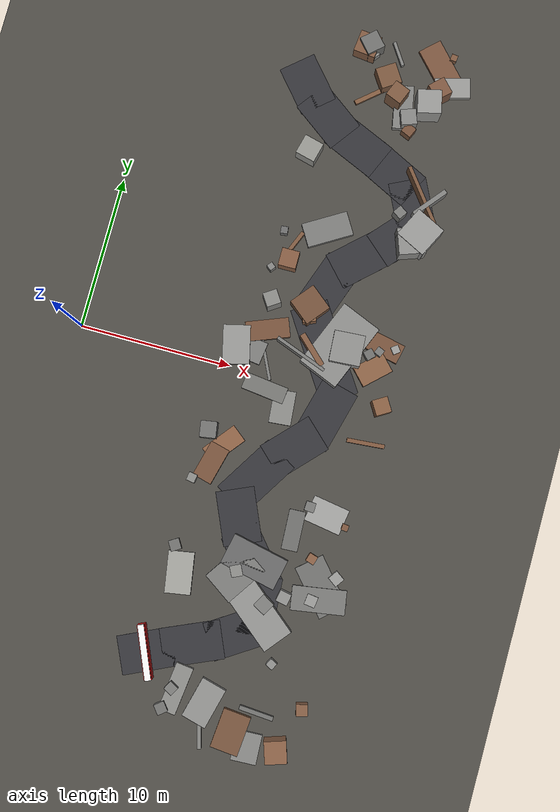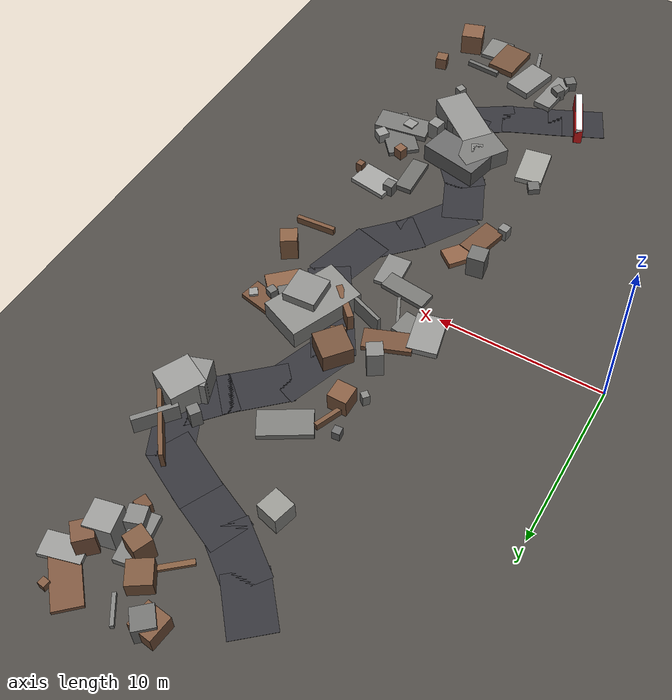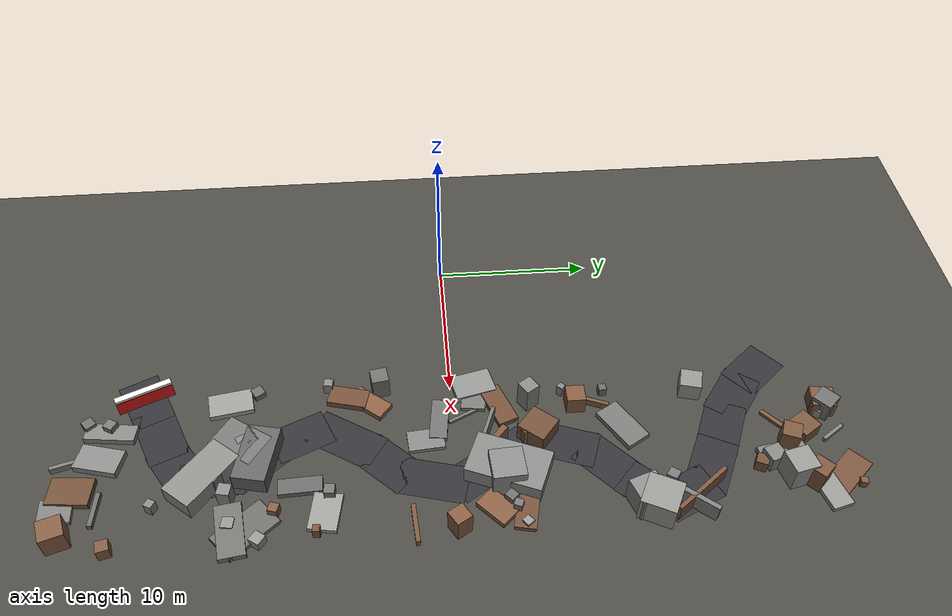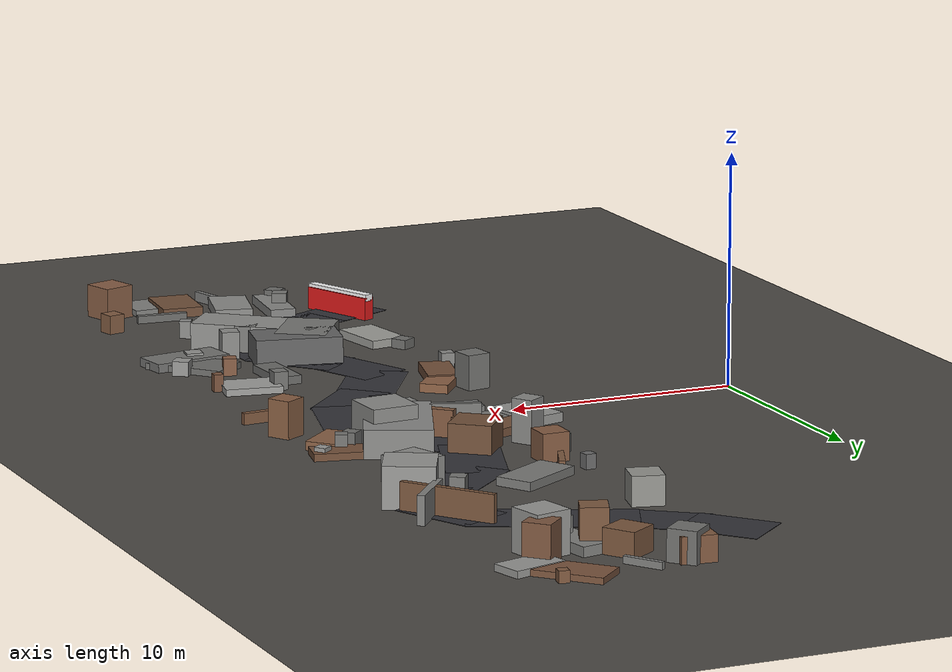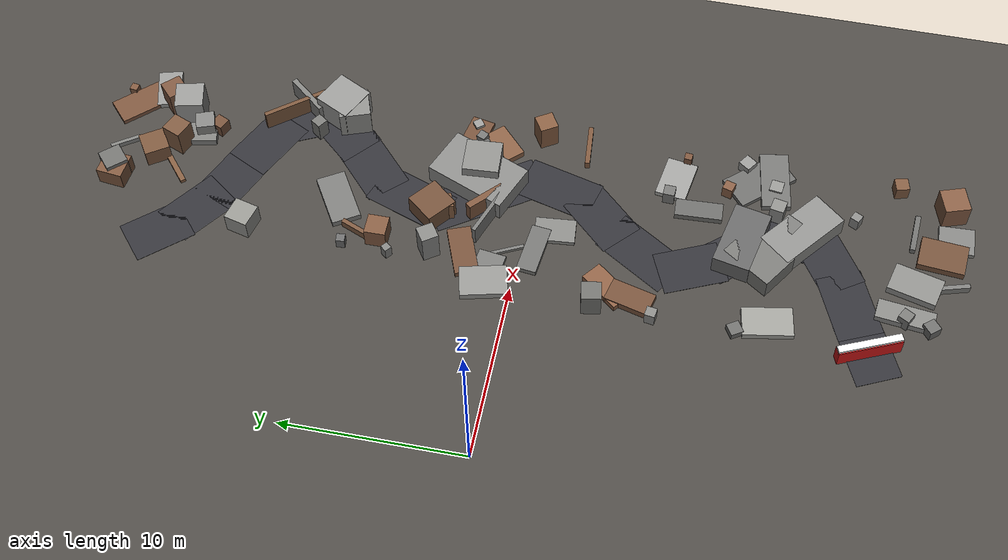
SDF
<sdf version="1.6">
 <world name="navitas_arena">
  <model name="ground_plane">
   <static>true</static>
   <link name="link">
    <collision name="collision">
     <geometry><plane><normal>0 0 1</normal><size>400 400</size></plane></geometry>
     <surface><friction><ode><mu>0.800</mu><mu2>0.800</mu2></ode></friction></surface>
    </collision>
    <visual name="visual">
     <cast_shadows>false</cast_shadows>
     <geometry><plane><normal>0 0 1</normal><size>400 400</size></plane></geometry>
     <material><ambient>0.300 0.290 0.270 1</ambient><diffuse>0.300 0.290 0.270 1</diffuse></material>
    </visual>
   </link>
  </model>
  <model name="road_orta_3_2">
   <static>true</static>
   <pose>9.803 -18.930 0.040 0 0 0.435</pose>
   <link name="link">
    <collision name="col"><geometry><box><size>3.607 2.500 0.020</size></box></geometry></collision>
    <visual name="vis">
     <geometry><box><size>3.607 2.500 0.020</size></box></geometry>
     <material><ambient>0.20 0.20 0.22 1</ambient><diffuse>0.20 0.20 0.22 1</diffuse></material>
    </visual>
   </link>
  </model>
  <model name="road_orta_3_3">
   <static>true</static>
   <pose>12.409 -17.758 0.040 0 0 0.412</pose>
   <link name="link">
    <collision name="col"><geometry><box><size>3.908 2.500 0.020</size></box></geometry></collision>
    <visual name="vis">
     <geometry><box><size>3.908 2.500 0.020</size></box></geometry>
     <material><ambient>0.20 0.20 0.22 1</ambient><diffuse>0.20 0.20 0.22 1</diffuse></material>
    </visual>
   </link>
  </model>
  <model name="road_orta_3_4">
   <static>true</static>
   <pose>14.846 -16.469 0.040 0 0 0.575</pose>
   <link name="link">
    <collision name="col"><geometry><box><size>3.424 2.500 0.020</size></box></geometry></collision>
    <visual name="vis">
     <geometry><box><size>3.424 2.500 0.020</size></box></geometry>
     <material><ambient>0.20 0.20 0.22 1</ambient><diffuse>0.20 0.20 0.22 1</diffuse></material>
    </visual>
   </link>
  </model>
  <model name="road_orta_3_5">
   <static>true</static>
   <pose>15.804 -14.317 0.040 0 0 1.639</pose>
   <link name="link">
    <collision name="col"><geometry><box><size>3.838 2.500 0.020</size></box></geometry></collision>
    <visual name="vis">
     <geometry><box><size>3.838 2.500 0.020</size></box></geometry>
     <material><ambient>0.20 0.20 0.22 1</ambient><diffuse>0.20 0.20 0.22 1</diffuse></material>
    </visual>
   </link>
  </model>
  <model name="road_orta_3_6">
   <static>true</static>
   <pose>14.692 -11.639 0.040 0 0 2.266</pose>
   <link name="link">
    <collision name="col"><geometry><box><size>4.059 2.500 0.020</size></box></geometry></collision>
    <visual name="vis">
     <geometry><box><size>4.059 2.500 0.020</size></box></geometry>
     <material><ambient>0.20 0.20 0.22 1</ambient><diffuse>0.20 0.20 0.22 1</diffuse></material>
    </visual>
   </link>
  </model>
  <model name="road_orta_3_7">
   <static>true</static>
   <pose>13.147 -9.213 0.040 0 0 1.985</pose>
   <link name="link">
    <collision name="col"><geometry><box><size>3.550 2.500 0.020</size></box></geometry></collision>
    <visual name="vis">
     <geometry><box><size>3.550 2.500 0.020</size></box></geometry>
     <material><ambient>0.20 0.20 0.22 1</ambient><diffuse>0.20 0.20 0.22 1</diffuse></material>
    </visual>
   </link>
  </model>
  <model name="road_orta_3_8">
   <static>true</static>
   <pose>13.553 -6.500 0.040 0 0 1.011</pose>
   <link name="link">
    <collision name="col"><geometry><box><size>4.440 2.500 0.020</size></box></geometry></collision>
    <visual name="vis">
     <geometry><box><size>4.440 2.500 0.020</size></box></geometry>
     <material><ambient>0.20 0.20 0.22 1</ambient><diffuse>0.20 0.20 0.22 1</diffuse></material>
    </visual>
   </link>
  </model>
  <model name="road_orta_3_9">
   <static>true</static>
   <pose>15.436 -4.000 0.040 0 0 0.815</pose>
   <link name="link">
    <collision name="col"><geometry><box><size>3.649 2.500 0.020</size></box></geometry></collision>
    <visual name="vis">
     <geometry><box><size>3.649 2.500 0.020</size></box></geometry>
     <material><ambient>0.20 0.20 0.22 1</ambient><diffuse>0.20 0.20 0.22 1</diffuse></material>
    </visual>
   </link>
  </model>
  <model name="road_orta_3_10">
   <static>true</static>
   <pose>16.792 -1.417 0.040 0 0 1.315</pose>
   <link name="link">
    <collision name="col"><geometry><box><size>4.173 2.500 0.020</size></box></geometry></collision>
    <visual name="vis">
     <geometry><box><size>4.173 2.500 0.020</size></box></geometry>
     <material><ambient>0.20 0.20 0.22 1</ambient><diffuse>0.20 0.20 0.22 1</diffuse></material>
    </visual>
   </link>
  </model>
  <model name="road_orta_3_11">
   <static>true</static>
   <pose>16.433 1.333 0.040 0 0 2.156</pose>
   <link name="link">
    <collision name="col"><geometry><box><size>3.699 2.500 0.020</size></box></geometry></collision>
    <visual name="vis">
     <geometry><box><size>3.699 2.500 0.020</size></box></geometry>
     <material><ambient>0.20 0.20 0.22 1</ambient><diffuse>0.20 0.20 0.22 1</diffuse></material>
    </visual>
   </link>
  </model>
  <model name="road_orta_3_12">
   <static>true</static>
   <pose>14.907 3.667 0.040 0 0 2.144</pose>
   <link name="link">
    <collision name="col"><geometry><box><size>3.677 2.500 0.020</size></box></geometry></collision>
    <visual name="vis">
     <geometry><box><size>3.677 2.500 0.020</size></box></geometry>
     <material><ambient>0.20 0.20 0.22 1</ambient><diffuse>0.20 0.20 0.22 1</diffuse></material>
    </visual>
   </link>
  </model>
  <model name="road_orta_3_13">
   <static>true</static>
   <pose>14.732 6.453 0.040 0 0 1.228</pose>
   <link name="link">
    <collision name="col"><geometry><box><size>4.340 2.500 0.020</size></box></geometry></collision>
    <visual name="vis">
     <geometry><box><size>4.340 2.500 0.020</size></box></geometry>
     <material><ambient>0.20 0.20 0.22 1</ambient><diffuse>0.20 0.20 0.22 1</diffuse></material>
    </visual>
   </link>
  </model>
  <model name="road_orta_3_14">
   <static>true</static>
   <pose>16.453 9.124 0.040 0 0 0.744</pose>
   <link name="link">
    <collision name="col"><geometry><box><size>4.004 2.500 0.020</size></box></geometry></collision>
    <visual name="vis">
     <geometry><box><size>4.004 2.500 0.020</size></box></geometry>
     <material><ambient>0.20 0.20 0.22 1</ambient><diffuse>0.20 0.20 0.22 1</diffuse></material>
    </visual>
   </link>
  </model>
  <model name="road_orta_3_15">
   <static>true</static>
   <pose>18.461 11.153 0.040 0 0 0.846</pose>
   <link name="link">
    <collision name="col"><geometry><box><size>3.513 2.500 0.020</size></box></geometry></collision>
    <visual name="vis">
     <geometry><box><size>3.513 2.500 0.020</size></box></geometry>
     <material><ambient>0.20 0.20 0.22 1</ambient><diffuse>0.20 0.20 0.22 1</diffuse></material>
    </visual>
   </link>
  </model>
  <model name="road_orta_3_16">
   <static>true</static>
   <pose>18.755 13.314 0.040 0 0 2.021</pose>
   <link name="link">
    <collision name="col"><geometry><box><size>3.528 2.500 0.020</size></box></geometry></collision>
    <visual name="vis">
     <geometry><box><size>3.528 2.500 0.020</size></box></geometry>
     <material><ambient>0.20 0.20 0.22 1</ambient><diffuse>0.20 0.20 0.22 1</diffuse></material>
    </visual>
   </link>
  </model>
  <model name="road_orta_3_17">
   <static>true</static>
   <pose>16.889 15.135 0.040 0 0 2.684</pose>
   <link name="link">
    <collision name="col"><geometry><box><size>3.785 2.500 0.020</size></box></geometry></collision>
    <visual name="vis">
     <geometry><box><size>3.785 2.500 0.020</size></box></geometry>
     <material><ambient>0.20 0.20 0.22 1</ambient><diffuse>0.20 0.20 0.22 1</diffuse></material>
    </visual>
   </link>
  </model>
  <model name="road_orta_3_18">
   <static>true</static>
   <pose>14.273 16.352 0.040 0 0 2.729</pose>
   <link name="link">
    <collision name="col"><geometry><box><size>3.787 2.500 0.020</size></box></geometry></collision>
    <visual name="vis">
     <geometry><box><size>3.787 2.500 0.020</size></box></geometry>
     <material><ambient>0.20 0.20 0.22 1</ambient><diffuse>0.20 0.20 0.22 1</diffuse></material>
    </visual>
   </link>
  </model>
  <model name="road_orta_3_19">
   <static>true</static>
   <pose>11.869 17.729 0.040 0 0 2.506</pose>
   <link name="link">
    <collision name="col"><geometry><box><size>3.588 2.500 0.020</size></box></geometry></collision>
    <visual name="vis">
     <geometry><box><size>3.588 2.500 0.020</size></box></geometry>
     <material><ambient>0.20 0.20 0.22 1</ambient><diffuse>0.20 0.20 0.22 1</diffuse></material>
    </visual>
   </link>
  </model>
  <model name="road_orta_3_20">
   <static>true</static>
   <pose>9.989 19.461 0.040 0 0 2.279</pose>
   <link name="link">
    <collision name="col"><geometry><box><size>3.358 2.500 0.020</size></box></geometry></collision>
    <visual name="vis">
     <geometry><box><size>3.358 2.500 0.020</size></box></geometry>
     <material><ambient>0.20 0.20 0.22 1</ambient><diffuse>0.20 0.20 0.22 1</diffuse></material>
    </visual>
   </link>
  </model>
  <model name="bar_orta_3">
   <static>true</static>
   <pose>9.706 -18.931 0.500 0 0 1.978</pose>
   <link name="link">
    <collision name="col"><geometry><box><size>3.500 0.500 1.000</size></box></geometry></collision>
    <visual name="vis">
     <geometry><box><size>3.500 0.500 1.000</size></box></geometry>
     <material><ambient>0.85 0.10 0.10 1</ambient><diffuse>0.85 0.10 0.10 1</diffuse></material>
    </visual>
   </link>
  </model>
  <model name="bar_orta_3b">
   <static>true</static>
   <pose>9.706 -18.931 1.000 0 0 1.978</pose>
   <link name="link">
    <collision name="col"><geometry><box><size>3.500 0.400 0.300</size></box></geometry></collision>
    <visual name="vis">
     <geometry><box><size>3.500 0.400 0.300</size></box></geometry>
     <material><ambient>0.95 0.95 0.95 1</ambient><diffuse>0.95 0.95 0.95 1</diffuse></material>
    </visual>
   </link>
  </model>
  <model name="blk_orta_3_0_0">
   <static>true</static>
   <pose>13.924 -12.666 0.600 0 0 0.975</pose>
   <link name="link">
    <collision name="col"><geometry><box><size>3.023 2.226 1.200</size></box></geometry></collision>
    <visual name="vis">
     <geometry><box><size>3.023 2.226 1.200</size></box></geometry>
     <material><ambient>0.47 0.47 0.46 1</ambient><diffuse>0.47 0.47 0.46 1</diffuse></material>
    </visual>
   </link>
  </model>
  <model name="blk_orta_3_0_1">
   <static>true</static>
   <pose>13.928 -12.503 0.600 0 0 2.025</pose>
   <link name="link">
    <collision name="col"><geometry><box><size>0.737 0.737 1.200</size></box></geometry></collision>
    <visual name="vis">
     <geometry><box><size>0.737 0.737 1.200</size></box></geometry>
     <material><ambient>0.53 0.53 0.52 1</ambient><diffuse>0.53 0.53 0.52 1</diffuse></material>
    </visual>
   </link>
  </model>
  <model name="blk_orta_3_0_2">
   <static>true</static>
   <pose>17.259 -13.343 0.600 0 0 1.375</pose>
   <link name="link">
    <collision name="col"><geometry><box><size>0.762 0.762 1.200</size></box></geometry></collision>
    <visual name="vis">
     <geometry><box><size>0.762 0.762 1.200</size></box></geometry>
     <material><ambient>0.55 0.55 0.54 1</ambient><diffuse>0.55 0.55 0.54 1</diffuse></material>
    </visual>
   </link>
  </model>
  <model name="blk_orta_3_0_3">
   <static>true</static>
   <pose>15.993 -14.754 0.600 0 0 2.454</pose>
   <link name="link">
    <collision name="col"><geometry><box><size>4.218 2.079 1.200</size></box></geometry></collision>
    <visual name="vis">
     <geometry><box><size>4.218 2.079 1.200</size></box></geometry>
     <material><ambient>0.56 0.56 0.55 1</ambient><diffuse>0.56 0.56 0.55 1</diffuse></material>
    </visual>
   </link>
  </model>
  <model name="blk_orta_3_0_4">
   <static>true</static>
   <pose>14.865 -11.664 0.600 0 0 2.930</pose>
   <link name="link">
    <collision name="col"><geometry><box><size>3.759 2.035 1.200</size></box></geometry></collision>
    <visual name="vis">
     <geometry><box><size>3.759 2.035 1.200</size></box></geometry>
     <material><ambient>0.40 0.40 0.40 1</ambient><diffuse>0.40 0.40 0.40 1</diffuse></material>
    </visual>
   </link>
  </model>
  <model name="blk_orta_3_0_5">
   <static>true</static>
   <pose>16.156 -14.090 0.600 0 0 2.600</pose>
   <link name="link">
    <collision name="col"><geometry><box><size>0.925 0.925 1.200</size></box></geometry></collision>
    <visual name="vis">
     <geometry><box><size>0.925 0.925 1.200</size></box></geometry>
     <material><ambient>0.48 0.48 0.47 1</ambient><diffuse>0.48 0.48 0.47 1</diffuse></material>
    </visual>
   </link>
  </model>
  <model name="blk_orta_3_1_0">
   <static>true</static>
   <pose>14.891 2.293 0.600 0 0 2.379</pose>
   <link name="link">
    <collision name="col"><geometry><box><size>2.362 0.380 1.200</size></box></geometry></collision>
    <visual name="vis">
     <geometry><box><size>2.362 0.380 1.200</size></box></geometry>
     <material><ambient>0.50 0.35 0.25 1</ambient><diffuse>0.50 0.35 0.25 1</diffuse></material>
    </visual>
   </link>
  </model>
  <model name="blk_orta_3_1_1">
   <static>true</static>
   <pose>14.268 1.861 0.600 0 0 2.786</pose>
   <link name="link">
    <collision name="col"><geometry><box><size>3.629 0.219 1.200</size></box></geometry></collision>
    <visual name="vis">
     <geometry><box><size>3.629 0.219 1.200</size></box></geometry>
     <material><ambient>0.48 0.48 0.47 1</ambient><diffuse>0.48 0.48 0.47 1</diffuse></material>
    </visual>
   </link>
  </model>
  <model name="blk_orta_3_1_2">
   <static>true</static>
   <pose>14.006 5.078 0.626 0 0 2.456</pose>
   <link name="link">
    <collision name="col"><geometry><box><size>1.814 1.814 1.253</size></box></geometry></collision>
    <visual name="vis">
     <geometry><box><size>1.814 1.814 1.253</size></box></geometry>
     <material><ambient>0.45 0.32 0.23 1</ambient><diffuse>0.45 0.32 0.23 1</diffuse></material>
    </visual>
   </link>
  </model>
  <model name="blk_orta_3_1_3">
   <static>true</static>
   <pose>14.107 4.412 0.600 0 0 0.382</pose>
   <link name="link">
    <collision name="col"><geometry><box><size>0.876 0.876 1.200</size></box></geometry></collision>
    <visual name="vis">
     <geometry><box><size>0.876 0.876 1.200</size></box></geometry>
     <material><ambient>0.51 0.36 0.25 1</ambient><diffuse>0.51 0.36 0.25 1</diffuse></material>
    </visual>
   </link>
  </model>
  <model name="blk_orta_3_1_4">
   <static>true</static>
   <pose>16.523 3.053 0.600 0 0 1.179</pose>
   <link name="link">
    <collision name="col"><geometry><box><size>4.667 2.814 1.200</size></box></geometry></collision>
    <visual name="vis">
     <geometry><box><size>4.667 2.814 1.200</size></box></geometry>
     <material><ambient>0.54 0.54 0.53 1</ambient><diffuse>0.54 0.54 0.53 1</diffuse></material>
    </visual>
   </link>
  </model>
  <model name="blk_orta_3_1_5">
   <static>true</static>
   <pose>17.021 2.909 0.894 0 0 1.633</pose>
   <link name="link">
    <collision name="col"><geometry><box><size>1.996 1.996 1.789</size></box></geometry></collision>
    <visual name="vis">
     <geometry><box><size>1.996 1.996 1.789</size></box></geometry>
     <material><ambient>0.55 0.55 0.54 1</ambient><diffuse>0.55 0.55 0.54 1</diffuse></material>
    </visual>
   </link>
  </model>
  <model name="blk_orta_3_2_0">
   <static>true</static>
   <pose>19.217 10.724 0.856 0 0 0.338</pose>
   <link name="link">
    <collision name="col"><geometry><box><size>1.741 1.741 1.713</size></box></geometry></collision>
    <visual name="vis">
     <geometry><box><size>1.741 1.741 1.713</size></box></geometry>
     <material><ambient>0.55 0.55 0.54 1</ambient><diffuse>0.55 0.55 0.54 1</diffuse></material>
    </visual>
   </link>
  </model>
  <model name="blk_orta_3_2_1">
   <static>true</static>
   <pose>19.632 11.402 0.869 0 0 1.107</pose>
   <link name="link">
    <collision name="col"><geometry><box><size>2.116 2.116 1.739</size></box></geometry></collision>
    <visual name="vis">
     <geometry><box><size>2.116 2.116 1.739</size></box></geometry>
     <material><ambient>0.59 0.59 0.58 1</ambient><diffuse>0.59 0.59 0.58 1</diffuse></material>
    </visual>
   </link>
  </model>
  <model name="blk_orta_3_2_2">
   <static>true</static>
   <pose>19.747 13.560 0.600 0 0 0.881</pose>
   <link name="link">
    <collision name="col"><geometry><box><size>2.581 0.306 1.200</size></box></geometry></collision>
    <visual name="vis">
     <geometry><box><size>2.581 0.306 1.200</size></box></geometry>
     <material><ambient>0.50 0.50 0.49 1</ambient><diffuse>0.50 0.50 0.49 1</diffuse></material>
    </visual>
   </link>
  </model>
  <model name="blk_orta_3_2_3">
   <static>true</static>
   <pose>18.056 12.438 0.600 0 0 2.540</pose>
   <link name="link">
    <collision name="col"><geometry><box><size>0.638 0.638 1.200</size></box></geometry></collision>
    <visual name="vis">
     <geometry><box><size>0.638 0.638 1.200</size></box></geometry>
     <material><ambient>0.47 0.47 0.46 1</ambient><diffuse>0.47 0.47 0.46 1</diffuse></material>
    </visual>
   </link>
  </model>
  <model name="blk_orta_3_2_5">
   <static>true</static>
   <pose>19.142 13.897 0.600 0 0 2.226</pose>
   <link name="link">
    <collision name="col"><geometry><box><size>4.090 0.243 1.200</size></box></geometry></collision>
    <visual name="vis">
     <geometry><box><size>4.090 0.243 1.200</size></box></geometry>
     <material><ambient>0.48 0.34 0.24 1</ambient><diffuse>0.48 0.34 0.24 1</diffuse></material>
    </visual>
   </link>
  </model>
  <model name="deb_orta_0">
   <static>true</static>
   <pose>15.893 19.936 0.848 0 0 2.752</pose>
   <link name="link">
    <collision name="col"><geometry><box><size>1.105 1.105 1.696</size></box></geometry></collision>
    <visual name="vis">
     <geometry><box><size>1.105 1.105 1.696</size></box></geometry>
     <material><ambient>0.49 0.35 0.25 1</ambient><diffuse>0.49 0.35 0.25 1</diffuse></material>
    </visual>
   </link>
  </model>
  <model name="deb_orta_8">
   <static>true</static>
   <pose>11.550 4.754 0.925 0 0 0.583</pose>
   <link name="link">
    <collision name="col"><geometry><box><size>0.940 0.940 1.849</size></box></geometry></collision>
    <visual name="vis">
     <geometry><box><size>0.940 0.940 1.849</size></box></geometry>
     <material><ambient>0.53 0.53 0.52 1</ambient><diffuse>0.53 0.53 0.52 1</diffuse></material>
    </visual>
   </link>
  </model>
  <model name="deb_orta_10">
   <static>true</static>
   <pose>17.396 -7.403 0.399 0 0 1.528</pose>
   <link name="link">
    <collision name="col"><geometry><box><size>0.627 0.627 0.798</size></box></geometry></collision>
    <visual name="vis">
     <geometry><box><size>0.627 0.627 0.798</size></box></geometry>
     <material><ambient>0.46 0.46 0.45 1</ambient><diffuse>0.46 0.46 0.45 1</diffuse></material>
    </visual>
   </link>
  </model>
  <model name="deb_orta_14">
   <static>true</static>
   <pose>10.909 6.915 0.374 0 0 0.875</pose>
   <link name="link">
    <collision name="col"><geometry><box><size>0.414 0.414 0.748</size></box></geometry></collision>
    <visual name="vis">
     <geometry><box><size>0.414 0.414 0.748</size></box></geometry>
     <material><ambient>0.51 0.51 0.50 1</ambient><diffuse>0.51 0.51 0.50 1</diffuse></material>
    </visual>
   </link>
  </model>
  <model name="deb_orta_15">
   <static>true</static>
   <pose>17.616 -17.583 0.379 0 0 1.093</pose>
   <link name="link">
    <collision name="col"><geometry><box><size>0.508 0.508 0.758</size></box></geometry></collision>
    <visual name="vis">
     <geometry><box><size>0.508 0.508 0.758</size></box></geometry>
     <material><ambient>0.54 0.54 0.53 1</ambient><diffuse>0.54 0.54 0.53 1</diffuse></material>
    </visual>
   </link>
  </model>
  <model name="deb_orta_19">
   <static>true</static>
   <pose>16.490 19.500 0.209 0 0 1.753</pose>
   <link name="link">
    <collision name="col"><geometry><box><size>2.902 1.244 0.418</size></box></geometry></collision>
    <visual name="vis">
     <geometry><box><size>2.902 1.244 0.418</size></box></geometry>
     <material><ambient>0.50 0.50 0.49 1</ambient><diffuse>0.50 0.50 0.49 1</diffuse></material>
    </visual>
   </link>
  </model>
  <model name="deb_orta_21">
   <static>true</static>
   <pose>20.104 3.801 0.238 0 0 0.640</pose>
   <link name="link">
    <collision name="col"><geometry><box><size>0.507 0.507 0.477</size></box></geometry></collision>
    <visual name="vis">
     <geometry><box><size>0.507 0.507 0.477</size></box></geometry>
     <material><ambient>0.60 0.60 0.59 1</ambient><diffuse>0.60 0.60 0.59 1</diffuse></material>
    </visual>
   </link>
  </model>
  <model name="deb_orta_27">
   <static>true</static>
   <pose>12.580 -0.804 0.158 0 0 3.024</pose>
   <link name="link">
    <collision name="col"><geometry><box><size>2.854 1.082 0.316</size></box></geometry></collision>
    <visual name="vis">
     <geometry><box><size>2.854 1.082 0.316</size></box></geometry>
     <material><ambient>0.45 0.45 0.44 1</ambient><diffuse>0.45 0.45 0.44 1</diffuse></material>
    </visual>
   </link>
  </model>
  <model name="deb_orta_29">
   <static>true</static>
   <pose>9.697 -12.002 0.205 0 0 0.554</pose>
   <link name="link">
    <collision name="col"><geometry><box><size>0.704 0.704 0.410</size></box></geometry></collision>
    <visual name="vis">
     <geometry><box><size>0.704 0.704 0.410</size></box></geometry>
     <material><ambient>0.43 0.43 0.42 1</ambient><diffuse>0.43 0.43 0.42 1</diffuse></material>
    </visual>
   </link>
  </model>
  <model name="deb_orta_31">
   <static>true</static>
   <pose>13.165 22.786 0.536 0 0 3.026</pose>
   <link name="link">
    <collision name="col"><geometry><box><size>1.448 1.448 1.073</size></box></geometry></collision>
    <visual name="vis">
     <geometry><box><size>1.448 1.448 1.073</size></box></geometry>
     <material><ambient>0.50 0.35 0.25 1</ambient><diffuse>0.50 0.35 0.25 1</diffuse></material>
    </visual>
   </link>
  </model>
  <model name="deb_orta_38">
   <static>true</static>
   <pose>14.293 -22.793 0.223 0 0 1.850</pose>
   <link name="link">
    <collision name="col"><geometry><box><size>2.252 0.250 0.445</size></box></geometry></collision>
    <visual name="vis">
     <geometry><box><size>2.252 0.250 0.445</size></box></geometry>
     <material><ambient>0.49 0.49 0.48 1</ambient><diffuse>0.49 0.49 0.48 1</diffuse></material>
    </visual>
   </link>
  </model>
  <model name="deb_orta_47">
   <static>true</static>
   <pose>12.161 0.999 0.092 0 0 2.019</pose>
   <link name="link">
    <collision name="col"><geometry><box><size>2.692 0.190 0.184</size></box></geometry></collision>
    <visual name="vis">
     <geometry><box><size>2.692 0.190 0.184</size></box></geometry>
     <material><ambient>0.48 0.48 0.47 1</ambient><diffuse>0.48 0.48 0.47 1</diffuse></material>
    </visual>
   </link>
  </model>
  <model name="deb_orta_48">
   <static>true</static>
   <pose>13.793 10.312 0.184 0 0 0.543</pose>
   <link name="link">
    <collision name="col"><geometry><box><size>3.073 1.603 0.369</size></box></geometry></collision>
    <visual name="vis">
     <geometry><box><size>3.073 1.603 0.369</size></box></geometry>
     <material><ambient>0.48 0.48 0.47 1</ambient><diffuse>0.48 0.48 0.47 1</diffuse></material>
    </visual>
   </link>
  </model>
  <model name="deb_orta_49">
   <static>true</static>
   <pose>11.097 9.480 0.311 0 0 0.107</pose>
   <link name="link">
    <collision name="col"><geometry><box><size>0.472 0.472 0.622</size></box></geometry></collision>
    <visual name="vis">
     <geometry><box><size>0.472 0.472 0.622</size></box></geometry>
     <material><ambient>0.42 0.42 0.42 1</ambient><diffuse>0.42 0.42 0.42 1</diffuse></material>
    </visual>
   </link>
  </model>
  <model name="deb_orta_50">
   <static>true</static>
   <pose>10.700 1.467 0.140 0 0 3.006</pose>
   <link name="link">
    <collision name="col"><geometry><box><size>2.472 1.501 0.279</size></box></geometry></collision>
    <visual name="vis">
     <geometry><box><size>2.472 1.501 0.279</size></box></geometry>
     <material><ambient>0.48 0.48 0.47 1</ambient><diffuse>0.48 0.48 0.47 1</diffuse></material>
    </visual>
   </link>
  </model>
  <model name="deb_orta_54">
   <static>true</static>
   <pose>18.356 -10.558 0.369 0 0 2.841</pose>
   <link name="link">
    <collision name="col"><geometry><box><size>0.574 0.574 0.738</size></box></geometry></collision>
    <visual name="vis">
     <geometry><box><size>0.574 0.574 0.738</size></box></geometry>
     <material><ambient>0.53 0.37 0.27 1</ambient><diffuse>0.53 0.37 0.27 1</diffuse></material>
    </visual>
   </link>
  </model>
  <model name="deb_orta_57">
   <static>true</static>
   <pose>19.317 21.643 0.148 0 0 0.266</pose>
   <link name="link">
    <collision name="col"><geometry><box><size>2.318 1.341 0.295</size></box></geometry></collision>
    <visual name="vis">
     <geometry><box><size>2.318 1.341 0.295</size></box></geometry>
     <material><ambient>0.59 0.59 0.58 1</ambient><diffuse>0.59 0.59 0.58 1</diffuse></material>
    </visual>
   </link>
  </model>
  <model name="deb_orta_58">
   <static>true</static>
   <pose>15.282 22.966 0.149 0 0 2.160</pose>
   <link name="link">
    <collision name="col"><geometry><box><size>1.678 0.210 0.298</size></box></geometry></collision>
    <visual name="vis">
     <geometry><box><size>1.678 0.210 0.298</size></box></geometry>
     <material><ambient>0.50 0.50 0.49 1</ambient><diffuse>0.50 0.50 0.49 1</diffuse></material>
    </visual>
   </link>
  </model>
  <model name="deb_orta_68">
   <static>true</static>
   <pose>18.022 19.855 0.886 0 0 1.797</pose>
   <link name="link">
    <collision name="col"><geometry><box><size>1.559 1.559 1.772</size></box></geometry></collision>
    <visual name="vis">
     <geometry><box><size>1.559 1.559 1.772</size></box></geometry>
     <material><ambient>0.59 0.59 0.58 1</ambient><diffuse>0.59 0.59 0.58 1</diffuse></material>
    </visual>
   </link>
  </model>
  <model name="deb_orta_69">
   <static>true</static>
   <pose>16.991 18.744 0.545 0 0 1.899</pose>
   <link name="link">
    <collision name="col"><geometry><box><size>1.028 1.028 1.091</size></box></geometry></collision>
    <visual name="vis">
     <geometry><box><size>1.028 1.028 1.091</size></box></geometry>
     <material><ambient>0.52 0.52 0.51 1</ambient><diffuse>0.52 0.52 0.51 1</diffuse></material>
    </visual>
   </link>
  </model>
  <model name="deb_orta_74">
   <static>true</static>
   <pose>11.605 -22.047 0.326 0 0 2.249</pose>
   <link name="link">
    <collision name="col"><geometry><box><size>0.692 0.692 0.651</size></box></geometry></collision>
    <visual name="vis">
     <geometry><box><size>0.692 0.692 0.651</size></box></geometry>
     <material><ambient>0.43 0.43 0.42 1</ambient><diffuse>0.43 0.43 0.42 1</diffuse></material>
    </visual>
   </link>
  </model>
  <model name="deb_orta_76">
   <static>true</static>
   <pose>11.762 2.925 0.176 0 0 0.367</pose>
   <link name="link">
    <collision name="col"><geometry><box><size>2.839 1.295 0.353</size></box></geometry></collision>
    <visual name="vis">
     <geometry><box><size>2.839 1.295 0.353</size></box></geometry>
     <material><ambient>0.46 0.32 0.23 1</ambient><diffuse>0.46 0.32 0.23 1</diffuse></material>
    </visual>
   </link>
  </model>
  <model name="deb_orta_83">
   <static>true</static>
   <pose>12.188 -20.678 0.205 0 0 1.450</pose>
   <link name="link">
    <collision name="col"><geometry><box><size>3.098 1.149 0.410</size></box></geometry></collision>
    <visual name="vis">
     <geometry><box><size>3.098 1.149 0.410</size></box></geometry>
     <material><ambient>0.53 0.53 0.52 1</ambient><diffuse>0.53 0.53 0.52 1</diffuse></material>
    </visual>
   </link>
  </model>
  <model name="deb_orta_97">
   <static>true</static>
   <pose>11.900 7.638 0.609 0 0 1.575</pose>
   <link name="link">
    <collision name="col"><geometry><box><size>1.163 1.163 1.217</size></box></geometry></collision>
    <visual name="vis">
     <geometry><box><size>1.163 1.163 1.217</size></box></geometry>
     <material><ambient>0.52 0.36 0.26 1</ambient><diffuse>0.52 0.36 0.26 1</diffuse></material>
    </visual>
   </link>
  </model>
  <model name="deb_orta_98">
   <static>true</static>
   <pose>19.007 -13.125 0.241 0 0 1.440</pose>
   <link name="link">
    <collision name="col"><geometry><box><size>0.707 0.707 0.481</size></box></geometry></collision>
    <visual name="vis">
     <geometry><box><size>0.707 0.707 0.481</size></box></geometry>
     <material><ambient>0.58 0.58 0.57 1</ambient><diffuse>0.58 0.58 0.57 1</diffuse></material>
    </visual>
   </link>
  </model>
  <model name="deb_orta_111">
   <static>true</static>
   <pose>19.456 -12.983 0.191 0 0 0.156</pose>
   <link name="link">
    <collision name="col"><geometry><box><size>3.491 1.580 0.383</size></box></geometry></collision>
    <visual name="vis">
     <geometry><box><size>3.491 1.580 0.383</size></box></geometry>
     <material><ambient>0.46 0.46 0.45 1</ambient><diffuse>0.46 0.46 0.45 1</diffuse></material>
    </visual>
   </link>
  </model>
  <model name="deb_orta_119">
   <static>true</static>
   <pose>20.101 -0.063 0.794 0 0 0.546</pose>
   <link name="link">
    <collision name="col"><geometry><box><size>1.022 1.022 1.589</size></box></geometry></collision>
    <visual name="vis">
     <geometry><box><size>1.022 1.022 1.589</size></box></geometry>
     <material><ambient>0.53 0.37 0.26 1</ambient><diffuse>0.53 0.37 0.26 1</diffuse></material>
    </visual>
   </link>
  </model>
  <model name="deb_orta_120">
   <static>true</static>
   <pose>18.482 20.896 0.813 0 0 0.760</pose>
   <link name="link">
    <collision name="col"><geometry><box><size>1.144 1.144 1.627</size></box></geometry></collision>
    <visual name="vis">
     <geometry><box><size>1.144 1.144 1.627</size></box></geometry>
     <material><ambient>0.49 0.34 0.25 1</ambient><diffuse>0.49 0.34 0.25 1</diffuse></material>
    </visual>
   </link>
  </model>
  <model name="deb_orta_132">
   <static>true</static>
   <pose>9.609 -7.582 0.390 0 0 1.418</pose>
   <link name="link">
    <collision name="col"><geometry><box><size>0.560 0.560 0.781</size></box></geometry></collision>
    <visual name="vis">
     <geometry><box><size>0.560 0.560 0.781</size></box></geometry>
     <material><ambient>0.53 0.53 0.52 1</ambient><diffuse>0.53 0.53 0.52 1</diffuse></material>
    </visual>
   </link>
  </model>
  <model name="deb_orta_134">
   <static>true</static>
   <pose>19.070 3.883 0.152 0 0 2.935</pose>
   <link name="link">
    <collision name="col"><geometry><box><size>2.946 1.286 0.304</size></box></geometry></collision>
    <visual name="vis">
     <geometry><box><size>2.946 1.286 0.304</size></box></geometry>
     <material><ambient>0.46 0.32 0.23 1</ambient><diffuse>0.46 0.32 0.23 1</diffuse></material>
    </visual>
   </link>
  </model>
  <model name="deb_orta_136">
   <static>true</static>
   <pose>16.762 -9.135 0.181 0 0 1.616</pose>
   <link name="link">
    <collision name="col"><geometry><box><size>2.595 1.057 0.361</size></box></geometry></collision>
    <visual name="vis">
     <geometry><box><size>2.595 1.057 0.361</size></box></geometry>
     <material><ambient>0.42 0.42 0.41 1</ambient><diffuse>0.42 0.42 0.41 1</diffuse></material>
    </visual>
   </link>
  </model>
  <model name="deb_orta_138">
   <static>true</static>
   <pose>9.858 -4.366 0.756 0 0 0.159</pose>
   <link name="link">
    <collision name="col"><geometry><box><size>1.061 1.061 1.512</size></box></geometry></collision>
    <visual name="vis">
     <geometry><box><size>1.061 1.061 1.512</size></box></geometry>
     <material><ambient>0.44 0.44 0.43 1</ambient><diffuse>0.44 0.44 0.43 1</diffuse></material>
    </visual>
   </link>
  </model>
  <model name="deb_orta_140">
   <static>true</static>
   <pose>19.008 2.184 0.189 0 0 0.753</pose>
   <link name="link">
    <collision name="col"><geometry><box><size>2.151 1.407 0.378</size></box></geometry></collision>
    <visual name="vis">
     <geometry><box><size>2.151 1.407 0.378</size></box></geometry>
     <material><ambient>0.54 0.38 0.27 1</ambient><diffuse>0.54 0.38 0.27 1</diffuse></material>
    </visual>
   </link>
  </model>
  <model name="deb_orta_143">
   <static>true</static>
   <pose>18.581 -7.650 0.146 0 0 2.981</pose>
   <link name="link">
    <collision name="col"><geometry><box><size>2.435 1.706 0.292</size></box></geometry></collision>
    <visual name="vis">
     <geometry><box><size>2.435 1.706 0.292</size></box></geometry>
     <material><ambient>0.62 0.62 0.61 1</ambient><diffuse>0.62 0.62 0.61 1</diffuse></material>
    </visual>
   </link>
  </model>
  <model name="deb_orta_144">
   <static>true</static>
   <pose>13.745 22.474 0.296 0 0 0.881</pose>
   <link name="link">
    <collision name="col"><geometry><box><size>0.508 0.508 0.592</size></box></geometry></collision>
    <visual name="vis">
     <geometry><box><size>0.508 0.508 0.592</size></box></geometry>
     <material><ambient>0.57 0.57 0.56 1</ambient><diffuse>0.57 0.57 0.56 1</diffuse></material>
    </visual>
   </link>
  </model>
  <model name="deb_orta_147">
   <static>true</static>
   <pose>13.430 22.881 0.657 0 0 2.293</pose>
   <link name="link">
    <collision name="col"><geometry><box><size>1.217 1.217 1.314</size></box></geometry></collision>
    <visual name="vis">
     <geometry><box><size>1.217 1.217 1.314</size></box></geometry>
     <material><ambient>0.44 0.44 0.43 1</ambient><diffuse>0.44 0.44 0.43 1</diffuse></material>
    </visual>
   </link>
  </model>
  <model name="deb_orta_149">
   <static>true</static>
   <pose>20.189 -11.376 0.314 0 0 0.949</pose>
   <link name="link">
    <collision name="col"><geometry><box><size>0.710 0.710 0.628</size></box></geometry></collision>
    <visual name="vis">
     <geometry><box><size>0.710 0.710 0.628</size></box></geometry>
     <material><ambient>0.59 0.59 0.58 1</ambient><diffuse>0.59 0.59 0.58 1</diffuse></material>
    </visual>
   </link>
  </model>
  <model name="deb_orta_150">
   <static>true</static>
   <pose>14.008 -1.698 0.133 0 0 1.658</pose>
   <link name="link">
    <collision name="col"><geometry><box><size>2.212 1.447 0.267</size></box></geometry></collision>
    <visual name="vis">
     <geometry><box><size>2.212 1.447 0.267</size></box></geometry>
     <material><ambient>0.53 0.53 0.52 1</ambient><diffuse>0.53 0.53 0.52 1</diffuse></material>
    </visual>
   </link>
  </model>
  <model name="deb_orta_151">
   <static>true</static>
   <pose>10.999 -5.022 0.188 0 0 0.897</pose>
   <link name="link">
    <collision name="col"><geometry><box><size>2.515 1.227 0.376</size></box></geometry></collision>
    <visual name="vis">
     <geometry><box><size>2.515 1.227 0.376</size></box></geometry>
     <material><ambient>0.55 0.38 0.27 1</ambient><diffuse>0.55 0.38 0.27 1</diffuse></material>
    </visual>
   </link>
  </model>
  <model name="deb_orta_156">
   <static>true</static>
   <pose>19.885 -8.101 0.372 0 0 1.475</pose>
   <link name="link">
    <collision name="col"><geometry><box><size>0.418 0.418 0.744</size></box></geometry></collision>
    <visual name="vis">
     <geometry><box><size>0.418 0.418 0.744</size></box></geometry>
     <material><ambient>0.48 0.33 0.24 1</ambient><diffuse>0.48 0.33 0.24 1</diffuse></material>
    </visual>
   </link>
  </model>
  <model name="deb_orta_163">
   <static>true</static>
   <pose>18.180 22.893 0.130 0 0 2.315</pose>
   <link name="link">
    <collision name="col"><geometry><box><size>3.089 1.592 0.259</size></box></geometry></collision>
    <visual name="vis">
     <geometry><box><size>3.089 1.592 0.259</size></box></geometry>
     <material><ambient>0.48 0.33 0.24 1</ambient><diffuse>0.48 0.33 0.24 1</diffuse></material>
    </visual>
   </link>
  </model>
  <model name="deb_orta_169">
   <static>true</static>
   <pose>10.059 1.447 0.204 0 0 1.804</pose>
   <link name="link">
    <collision name="col"><geometry><box><size>2.555 1.781 0.408</size></box></geometry></collision>
    <visual name="vis">
     <geometry><box><size>2.555 1.781 0.408</size></box></geometry>
     <material><ambient>0.58 0.58 0.57 1</ambient><diffuse>0.58 0.58 0.57 1</diffuse></material>
    </visual>
   </link>
  </model>
  <model name="deb_orta_181">
   <static>true</static>
   <pose>16.244 -22.366 0.213 0 0 1.479</pose>
   <link name="link">
    <collision name="col"><geometry><box><size>2.538 1.816 0.426</size></box></geometry></collision>
    <visual name="vis">
     <geometry><box><size>2.538 1.816 0.426</size></box></geometry>
     <material><ambient>0.45 0.32 0.23 1</ambient><diffuse>0.45 0.32 0.23 1</diffuse></material>
    </visual>
   </link>
  </model>
  <model name="deb_orta_187">
   <static>true</static>
   <pose>19.395 -12.138 0.139 0 0 2.281</pose>
   <link name="link">
    <collision name="col"><geometry><box><size>3.546 1.964 0.278</size></box></geometry></collision>
    <visual name="vis">
     <geometry><box><size>3.546 1.964 0.278</size></box></geometry>
     <material><ambient>0.43 0.43 0.42 1</ambient><diffuse>0.43 0.43 0.42 1</diffuse></material>
    </visual>
   </link>
  </model>
  <model name="deb_orta_190">
   <static>true</static>
   <pose>10.527 -6.349 0.216 0 0 1.320</pose>
   <link name="link">
    <collision name="col"><geometry><box><size>2.449 1.321 0.432</size></box></geometry></collision>
    <visual name="vis">
     <geometry><box><size>2.449 1.321 0.432</size></box></geometry>
     <material><ambient>0.46 0.32 0.23 1</ambient><diffuse>0.46 0.32 0.23 1</diffuse></material>
    </visual>
   </link>
  </model>
  <model name="deb_orta_201">
   <static>true</static>
   <pose>10.450 -13.625 0.181 0 0 1.737</pose>
   <link name="link">
    <collision name="col"><geometry><box><size>2.703 1.677 0.362</size></box></geometry></collision>
    <visual name="vis">
     <geometry><box><size>2.703 1.677 0.362</size></box></geometry>
     <material><ambient>0.62 0.62 0.60 1</ambient><diffuse>0.62 0.62 0.60 1</diffuse></material>
    </visual>
   </link>
  </model>
  <model name="deb_orta_204">
   <static>true</static>
   <pose>17.539 4.246 0.346 0 0 2.126</pose>
   <link name="link">
    <collision name="col"><geometry><box><size>0.719 0.719 0.691</size></box></geometry></collision>
    <visual name="vis">
     <geometry><box><size>0.719 0.719 0.691</size></box></geometry>
     <material><ambient>0.47 0.47 0.46 1</ambient><diffuse>0.47 0.47 0.46 1</diffuse></material>
    </visual>
   </link>
  </model>
  <model name="deb_orta_208">
   <static>true</static>
   <pose>11.305 14.983 0.616 0 0 1.322</pose>
   <link name="link">
    <collision name="col"><geometry><box><size>1.331 1.331 1.231</size></box></geometry></collision>
    <visual name="vis">
     <geometry><box><size>1.331 1.331 1.231</size></box></geometry>
     <material><ambient>0.58 0.58 0.56 1</ambient><diffuse>0.58 0.58 0.56 1</diffuse></material>
    </visual>
   </link>
  </model>
  <model name="deb_orta_214">
   <static>true</static>
   <pose>20.195 -19.809 0.415 0 0 1.814</pose>
   <link name="link">
    <collision name="col"><geometry><box><size>0.735 0.735 0.829</size></box></geometry></collision>
    <visual name="vis">
     <geometry><box><size>0.735 0.735 0.829</size></box></geometry>
     <material><ambient>0.51 0.36 0.26 1</ambient><diffuse>0.51 0.36 0.26 1</diffuse></material>
    </visual>
   </link>
  </model>
  <model name="deb_orta_225">
   <static>true</static>
   <pose>19.250 -22.623 0.725 0 0 1.887</pose>
   <link name="link">
    <collision name="col"><geometry><box><size>1.408 1.408 1.449</size></box></geometry></collision>
    <visual name="vis">
     <geometry><box><size>1.408 1.408 1.449</size></box></geometry>
     <material><ambient>0.53 0.37 0.27 1</ambient><diffuse>0.53 0.37 0.27 1</diffuse></material>
    </visual>
   </link>
  </model>
  <model name="deb_orta_229">
   <static>true</static>
   <pose>19.789 -2.550 0.238 0 0 0.080</pose>
   <link name="link">
    <collision name="col"><geometry><box><size>2.454 0.267 0.476</size></box></geometry></collision>
    <visual name="vis">
     <geometry><box><size>2.454 0.267 0.476</size></box></geometry>
     <material><ambient>0.49 0.34 0.24 1</ambient><diffuse>0.49 0.34 0.24 1</diffuse></material>
    </visual>
   </link>
  </model>
  <model name="deb_orta_232">
   <static>true</static>
   <pose>14.295 19.843 0.105 0 0 0.704</pose>
   <link name="link">
    <collision name="col"><geometry><box><size>2.490 0.298 0.210</size></box></geometry></collision>
    <visual name="vis">
     <geometry><box><size>2.490 0.298 0.210</size></box></geometry>
     <material><ambient>0.51 0.36 0.25 1</ambient><diffuse>0.51 0.36 0.25 1</diffuse></material>
    </visual>
   </link>
  </model>
  <model name="deb_orta_237">
   <static>true</static>
   <pose>17.451 -23.031 0.136 0 0 1.612</pose>
   <link name="link">
    <collision name="col"><geometry><box><size>1.912 1.651 0.273</size></box></geometry></collision>
    <visual name="vis">
     <geometry><box><size>1.912 1.651 0.273</size></box></geometry>
     <material><ambient>0.51 0.51 0.50 1</ambient><diffuse>0.51 0.51 0.50 1</diffuse></material>
    </visual>
   </link>
  </model>
  <model name="deb_orta_238">
   <static>true</static>
   <pose>17.491 -20.819 0.166 0 0 3.069</pose>
   <link name="link">
    <collision name="col"><geometry><box><size>2.243 0.284 0.331</size></box></geometry></collision>
    <visual name="vis">
     <geometry><box><size>2.243 0.284 0.331</size></box></geometry>
     <material><ambient>0.43 0.43 0.42 1</ambient><diffuse>0.43 0.43 0.42 1</diffuse></material>
    </visual>
   </link>
  </model>
  <model name="deb_orta_240">
   <static>true</static>
   <pose>15.030 21.090 0.525 0 0 2.146</pose>
   <link name="link">
    <collision name="col"><geometry><box><size>1.388 1.388 1.049</size></box></geometry></collision>
    <visual name="vis">
     <geometry><box><size>1.388 1.388 1.049</size></box></geometry>
     <material><ambient>0.48 0.34 0.24 1</ambient><diffuse>0.48 0.34 0.24 1</diffuse></material>
    </visual>
   </link>
  </model>
  <model name="deb_orta_246">
   <static>true</static>
   <pose>11.998 8.894 0.234 0 0 1.179</pose>
   <link name="link">
    <collision name="col"><geometry><box><size>1.698 0.254 0.468</size></box></geometry></collision>
    <visual name="vis">
     <geometry><box><size>1.698 0.254 0.468</size></box></geometry>
     <material><ambient>0.49 0.35 0.25 1</ambient><diffuse>0.49 0.35 0.25 1</diffuse></material>
    </visual>
   </link>
  </model>
  <model name="deb_orta_247">
   <static>true</static>
   <pose>18.891 23.588 0.240 0 0 1.436</pose>
   <link name="link">
    <collision name="col"><geometry><box><size>0.424 0.424 0.480</size></box></geometry></collision>
    <visual name="vis">
     <geometry><box><size>0.424 0.424 0.480</size></box></geometry>
     <material><ambient>0.50 0.35 0.25 1</ambient><diffuse>0.50 0.35 0.25 1</diffuse></material>
    </visual>
   </link>
  </model>
  <model name="deb_orta_253">
   <static>true</static>
   <pose>14.138 -21.054 0.237 0 0 1.318</pose>
   <link name="link">
    <collision name="col"><geometry><box><size>2.687 1.670 0.473</size></box></geometry></collision>
    <visual name="vis">
     <geometry><box><size>2.687 1.670 0.473</size></box></geometry>
     <material><ambient>0.55 0.55 0.54 1</ambient><diffuse>0.55 0.55 0.54 1</diffuse></material>
    </visual>
   </link>
  </model>
  <model name="deb_orta_254">
   <static>true</static>
   <pose>18.536 3.031 0.387 0 0 0.744</pose>
   <link name="link">
    <collision name="col"><geometry><box><size>0.607 0.607 0.774</size></box></geometry></collision>
    <visual name="vis">
     <geometry><box><size>0.607 0.607 0.774</size></box></geometry>
     <material><ambient>0.43 0.43 0.42 1</ambient><diffuse>0.43 0.43 0.42 1</diffuse></material>
    </visual>
   </link>
  </model>
  <model name="deb_orta_259">
   <static>true</static>
   <pose>11.910 -20.670 0.414 0 0 1.063</pose>
   <link name="link">
    <collision name="col"><geometry><box><size>0.642 0.642 0.829</size></box></geometry></collision>
    <visual name="vis">
     <geometry><box><size>0.642 0.642 0.829</size></box></geometry>
     <material><ambient>0.47 0.47 0.46 1</ambient><diffuse>0.47 0.47 0.46 1</diffuse></material>
    </visual>
   </link>
  </model>
  <model name="deb_orta_261">
   <static>true</static>
   <pose>19.108 3.360 0.410 0 0 2.730</pose>
   <link name="link">
    <collision name="col"><geometry><box><size>0.499 0.499 0.820</size></box></geometry></collision>
    <visual name="vis">
     <geometry><box><size>0.499 0.499 0.820</size></box></geometry>
     <material><ambient>0.46 0.46 0.45 1</ambient><diffuse>0.46 0.46 0.45 1</diffuse></material>
    </visual>
   </link>
  </model>
  <model name="deb_orta_269">
   <static>true</static>
   <pose>17.221 17.990 0.397 0 0 2.724</pose>
   <link name="link">
    <collision name="col"><geometry><box><size>0.714 0.714 0.794</size></box></geometry></collision>
    <visual name="vis">
     <geometry><box><size>0.714 0.714 0.794</size></box></geometry>
     <material><ambient>0.46 0.32 0.23 1</ambient><diffuse>0.46 0.32 0.23 1</diffuse></material>
    </visual>
   </link>
  </model>
 </world>
</sdf>
